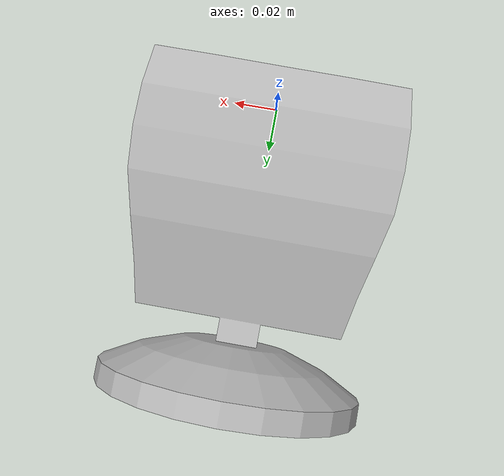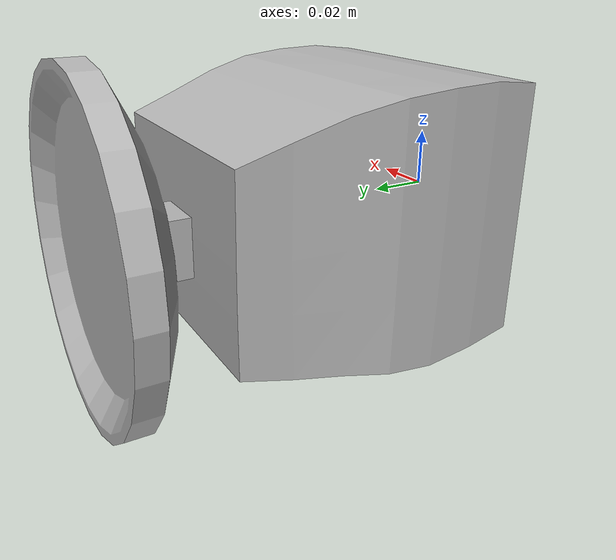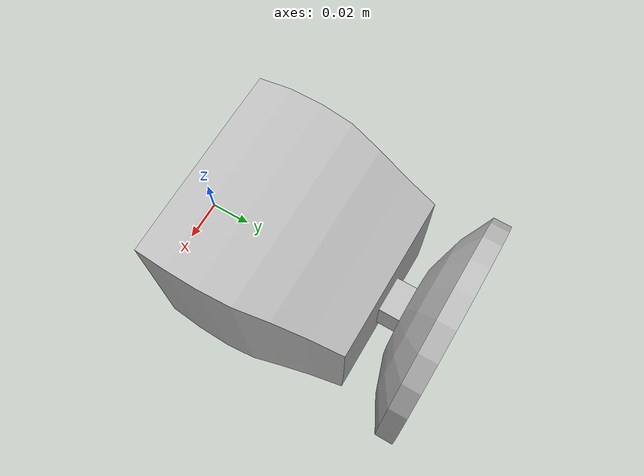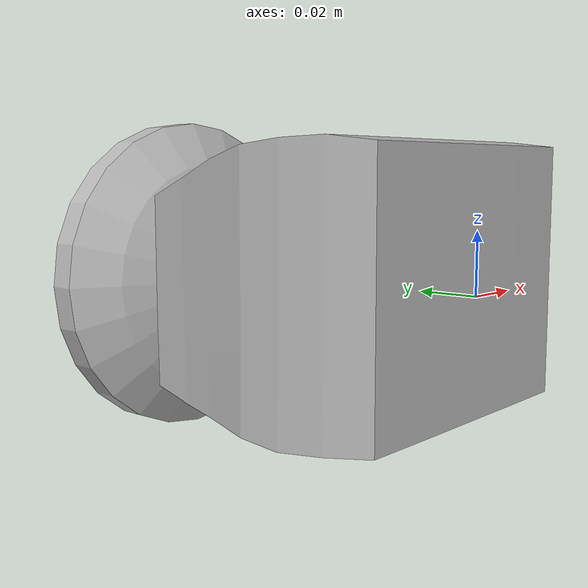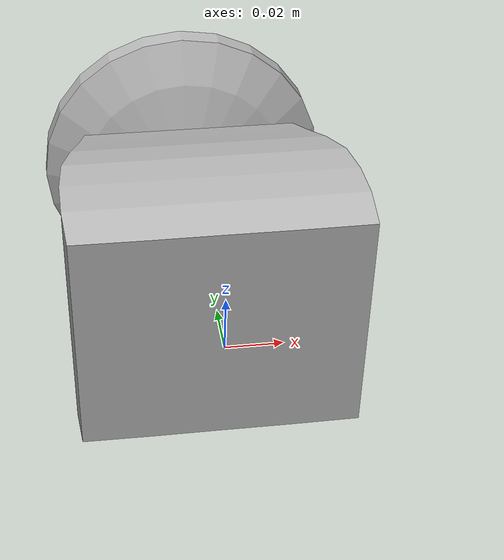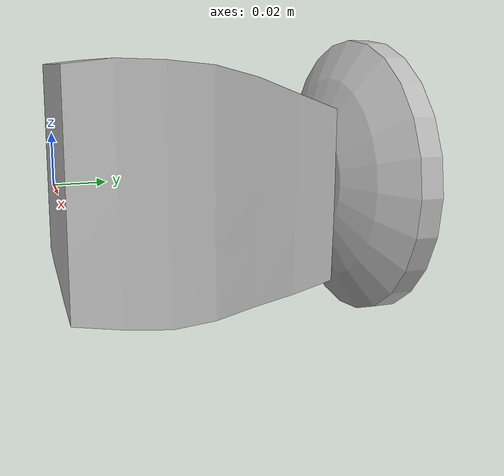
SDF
<?xml version="1.0" ?>
<sdf version="1.4">
  <model name="shelf2_scale2">
    <link name="body">
      <pose>0 0 0 0 0 0</pose>
      <inertial>
        <pose>  -0.000453   0.073845  -0.000154 0 0 0</pose>
        <mass>0.5</mass>
        <inertia>
          <ixx>0.01</ixx>
          <ixy>0</ixy>
          <ixz>0</ixz>
          <iyy>0.01</iyy>
          <iyz>0</iyz>
          <izz>0.01</izz>
        </inertia>
      </inertial>
      <collision name="collision">
        <geometry>
          <mesh>
            <uri>model://bookshelf/shelf2_items/scale2/scale2.dae</uri>
          </mesh>
        </geometry>
      </collision>
      <visual name="visual">
        <geometry>
          <mesh>
            <uri>model://bookshelf/shelf2_items/scale2/scale2.dae</uri>
          </mesh>
        </geometry>
      </visual>
    </link>
  </model>
</sdf>
